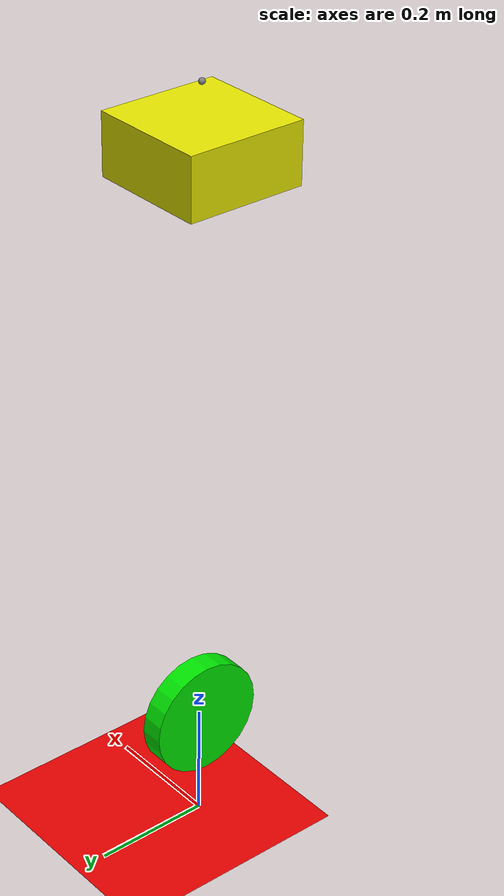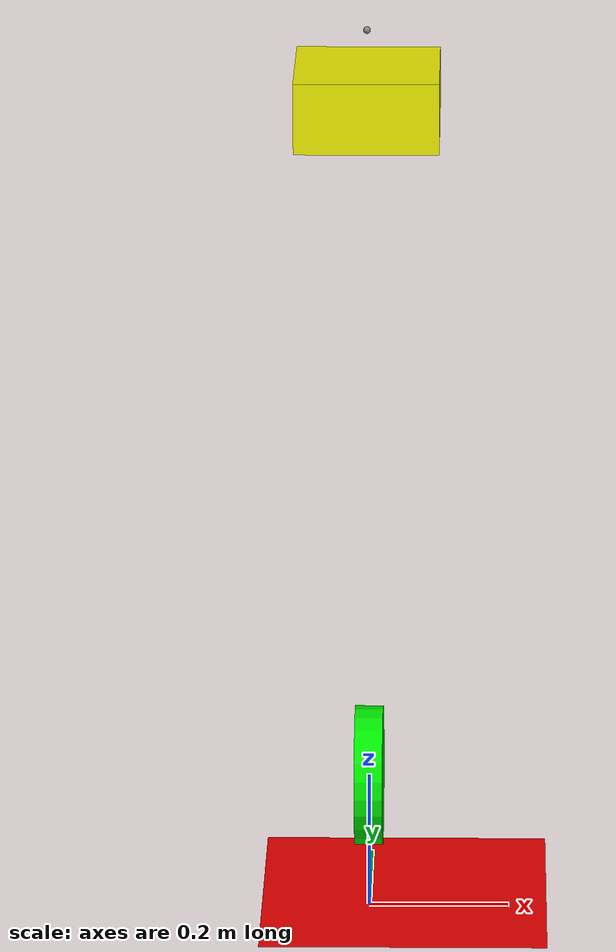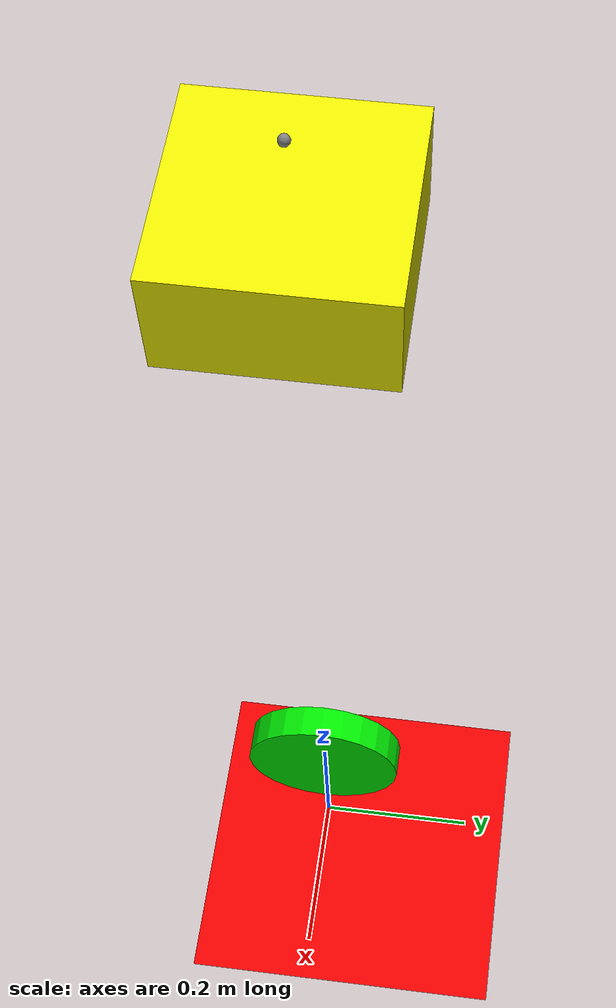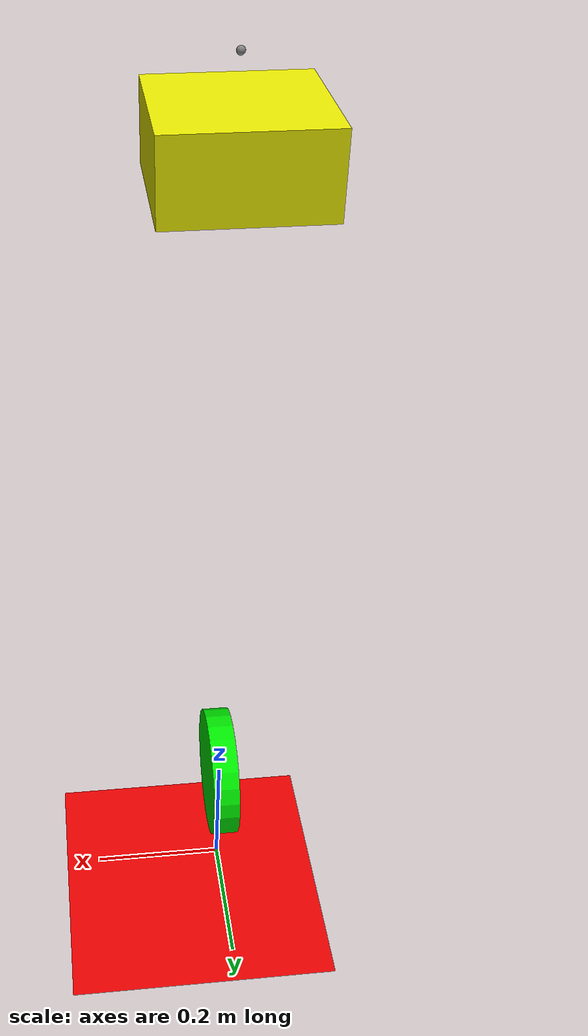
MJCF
<mujoco>
	<option gravity="0 0 -9.81">
	</option>

	<worldbody>
		<light diffuse=".5 .5 .5" pos="0 0 3" dir="0 0 -1"/>
    	<geom type="plane" size="5 5 0.1" rgba=".9 0 0 1"/>
		<body pos="0 0 1.2" euler="0 0 0">
			<joint type="free"/>
			<geom type="box" size="0.1 0.1 0.05" rgba=".9 .9 0 1" mass="2"/>
			<site name="imu_site" pos="0 0 0.1" quat="1 0 0 0"/> <!-- Position and orientation of the IMU -->
			<body pos="0 0 -1.0" euler="0 90 0">
				<joint name="pin" type="hinge" axis="0 0 -1" pos="0 0 0"/>
				<geom type="cylinder" size=".1 .02" rgba="0 .9 0 1" mass="1"/>
			</body>
		</body>
	</worldbody>

	<actuator>
		<motor joint="pin" name="torque" gear="1" ctrllimited="true" ctrlrange="-100 100"/>
		<position name="position_servo" joint="pin" kp="5"/>
		<velocity name="velocity_servo" joint="pin" kv="5"/>
	</actuator>

	<sensor>
		<jointpos joint="pin" noise="0.2"/>
		<jointvel joint="pin" noise="1"/>
		<accelerometer name="imu_accel" site="imu_site"/>
        <gyro name="imu_gyro" site="imu_site"/>
	</sensor>
</mujoco>
